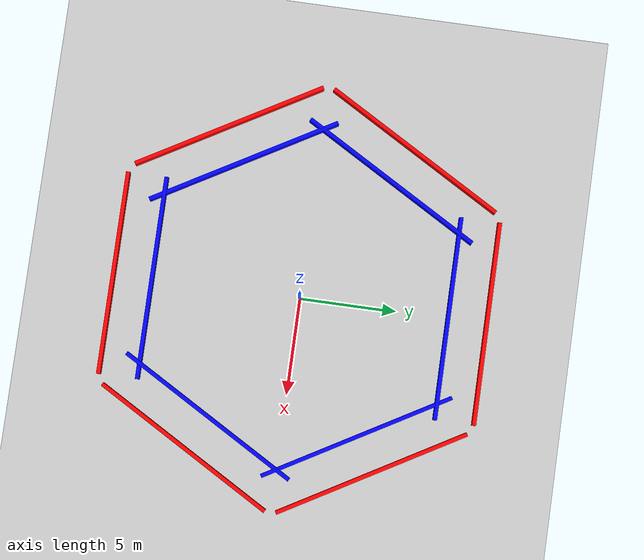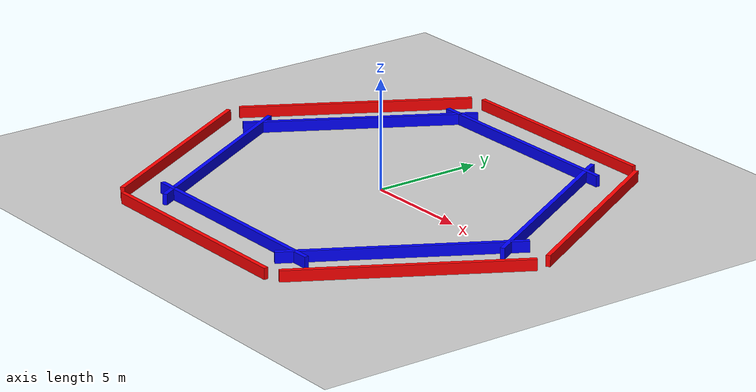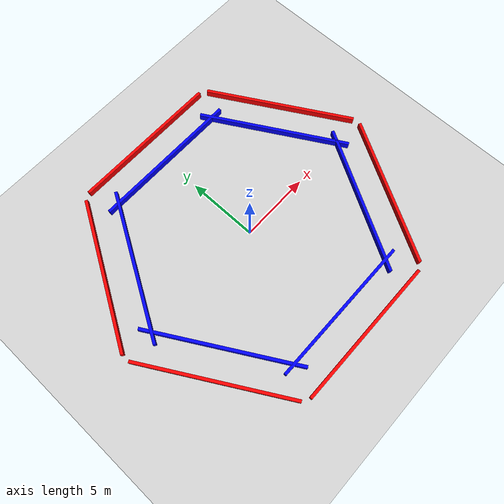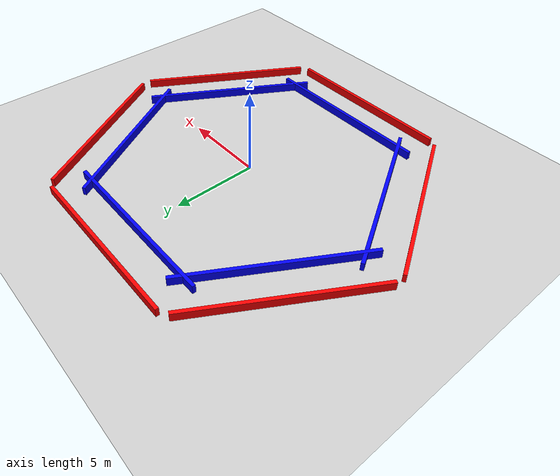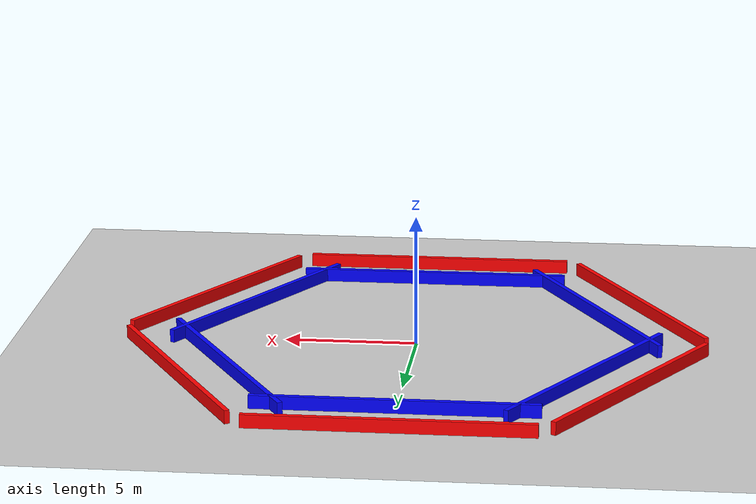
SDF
<?xml version="1.0" ?>
<sdf version="1.9">
  <world name="agentic_racer_track">
    <plugin filename="gz-sim-physics-system" name="gz::sim::systems::Physics"/>
    <plugin filename="gz-sim-user-commands-system" name="gz::sim::systems::UserCommands"/>
    <plugin filename="gz-sim-scene-broadcaster-system" name="gz::sim::systems::SceneBroadcaster"/>
    <plugin filename="gz-sim-sensors-system" name="gz::sim::systems::Sensors">
      <render_engine>ogre2</render_engine>
    </plugin>
    <plugin filename="gz-sim-contact-system" name="gz::sim::systems::Contact"/>

    <light type="directional" name="sun">
      <cast_shadows>true</cast_shadows>
      <pose>0 0 10 0 0 0</pose>
      <diffuse>0.8 0.8 0.8 1</diffuse>
      <specular>0.2 0.2 0.2 1</specular>
      <attenuation><range>1000</range><constant>0.9</constant><linear>0.01</linear><quadratic>0.001</quadratic></attenuation>
      <direction>-0.5 0.1 -0.9</direction>
    </light>

    <model name="ground_plane">
      <static>true</static>
      <link name="link">
        <collision name="collision">
          <geometry><plane><normal>0 0 1</normal><size>200 200</size></plane></geometry>
        </collision>
        <visual name="visual">
          <geometry><plane><normal>0 0 1</normal><size>200 200</size></plane></geometry>
          <material><ambient>0.8 0.8 0.8 1</ambient><diffuse>0.8 0.8 0.8 1</diffuse></material>
        </visual>
      </link>
    </model>

    <model name="track">
      <static>true</static>
      <!-- Edge 0 -->
      <link name="outer_0">
        <pose>8.366 4.83 0.25 0 0 2.0944</pose>
        <collision name="col"><geometry><box><size>10.5 0.2 0.5</size></box></geometry></collision>
        <visual name="vis"><geometry><box><size>10.5 0.2 0.5</size></box></geometry><material><ambient>1 0 0 1</ambient></material></visual>
      </link>
      <link name="inner_0">
        <pose>6.634 3.83 0.25 0 0 2.0944</pose>
        <collision name="col"><geometry><box><size>10.5 0.2 0.5</size></box></geometry></collision>
        <visual name="vis"><geometry><box><size>10.5 0.2 0.5</size></box></geometry><material><ambient>0 0 1 1</ambient></material></visual>
      </link>
      <!-- Edge 1 -->
      <link name="outer_1">
        <pose>0 9.66 0.25 0 0 3.1415</pose>
        <collision name="col"><geometry><box><size>10.5 0.2 0.5</size></box></geometry></collision>
        <visual name="vis"><geometry><box><size>10.5 0.2 0.5</size></box></geometry><material><ambient>1 0 0 1</ambient></material></visual>
      </link>
      <link name="inner_1">
        <pose>0 7.66 0.25 0 0 3.1415</pose>
        <collision name="col"><geometry><box><size>10.5 0.2 0.5</size></box></geometry></collision>
        <visual name="vis"><geometry><box><size>10.5 0.2 0.5</size></box></geometry><material><ambient>0 0 1 1</ambient></material></visual>
      </link>
      <!-- Edge 2 -->
      <link name="outer_2">
        <pose>-8.366 4.83 0.25 0 0 -2.0944</pose>
        <collision name="col"><geometry><box><size>10.5 0.2 0.5</size></box></geometry></collision>
        <visual name="vis"><geometry><box><size>10.5 0.2 0.5</size></box></geometry><material><ambient>1 0 0 1</ambient></material></visual>
      </link>
      <link name="inner_2">
        <pose>-6.634 3.83 0.25 0 0 -2.0944</pose>
        <collision name="col"><geometry><box><size>10.5 0.2 0.5</size></box></geometry></collision>
        <visual name="vis"><geometry><box><size>10.5 0.2 0.5</size></box></geometry><material><ambient>0 0 1 1</ambient></material></visual>
      </link>
      <!-- Edge 3 -->
      <link name="outer_3">
        <pose>-8.366 -4.83 0.25 0 0 -1.0472</pose>
        <collision name="col"><geometry><box><size>10.5 0.2 0.5</size></box></geometry></collision>
        <visual name="vis"><geometry><box><size>10.5 0.2 0.5</size></box></geometry><material><ambient>1 0 0 1</ambient></material></visual>
      </link>
      <link name="inner_3">
        <pose>-6.634 -3.83 0.25 0 0 -1.0472</pose>
        <collision name="col"><geometry><box><size>10.5 0.2 0.5</size></box></geometry></collision>
        <visual name="vis"><geometry><box><size>10.5 0.2 0.5</size></box></geometry><material><ambient>0 0 1 1</ambient></material></visual>
      </link>
      <!-- Edge 4 -->
      <link name="outer_4">
        <pose>0 -9.66 0.25 0 0 0</pose>
        <collision name="col"><geometry><box><size>10.5 0.2 0.5</size></box></geometry></collision>
        <visual name="vis"><geometry><box><size>10.5 0.2 0.5</size></box></geometry><material><ambient>1 0 0 1</ambient></material></visual>
      </link>
      <link name="inner_4">
        <pose>0 -7.66 0.25 0 0 0</pose>
        <collision name="col"><geometry><box><size>10.5 0.2 0.5</size></box></geometry></collision>
        <visual name="vis"><geometry><box><size>10.5 0.2 0.5</size></box></geometry><material><ambient>0 0 1 1</ambient></material></visual>
      </link>
      <!-- Edge 5 -->
      <link name="outer_5">
        <pose>8.366 -4.83 0.25 0 0 1.0472</pose>
        <collision name="col"><geometry><box><size>10.5 0.2 0.5</size></box></geometry></collision>
        <visual name="vis"><geometry><box><size>10.5 0.2 0.5</size></box></geometry><material><ambient>1 0 0 1</ambient></material></visual>
      </link>
      <link name="inner_5">
        <pose>6.634 -3.83 0.25 0 0 1.0472</pose>
        <collision name="col"><geometry><box><size>10.5 0.2 0.5</size></box></geometry></collision>
        <visual name="vis"><geometry><box><size>10.5 0.2 0.5</size></box></geometry><material><ambient>0 0 1 1</ambient></material></visual>
      </link>
    </model>
  </world>
</sdf>
